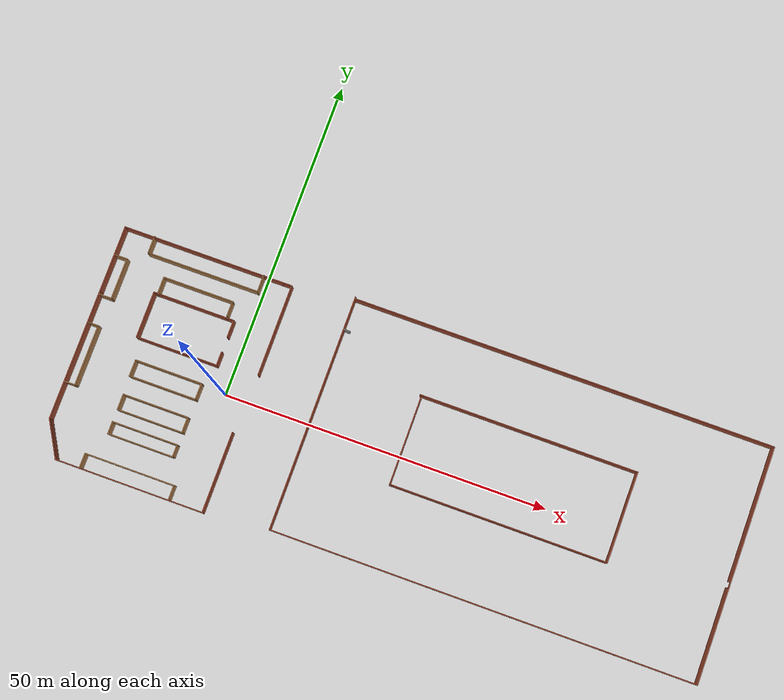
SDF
<sdf version="1.6">
 <world name="default">
  <light name="sun" type="directional">
   <pose>0 0 10 0 -0 0</pose>
   <diffuse>0.8 0.8 0.8 1</diffuse>
   <specular>0.1 0.1 0.1 1</specular>
   <attenuation>
    <range>1000</range>
    <constant>0.9</constant>
    <linear>0.01</linear>
    <quadratic>0.001</quadratic>
   </attenuation>
   <direction>-0.5 0.5 -1</direction>
  </light>
  <model name="ground_plane">
   <static>1</static>
   <link name="link">
    <collision name="collision">
     <geometry><plane><normal>0 0 1</normal><size>100 100</size></plane></geometry>
     <surface><friction><ode><mu>100</mu><mu2>50</mu2></ode></friction></surface>
    </collision>
    <visual name="visual">
     <cast_shadows>0</cast_shadows>
     <geometry><plane><normal>0 0 1</normal><size>100 100</size></plane></geometry>
     <material>
      <script><uri>file://media/materials/scripts/gazebo.material</uri><name>Gazebo/Grey</name></script>
     </material>
    </visual>
   </link>
  </model>
  <gravity>0 0 -9.8</gravity>
  <magnetic_field>6e-06 2.3e-05 -4.2e-05</magnetic_field>
  <atmosphere type="adiabatic"/>
  <physics name="default_physics" default="0" type="ode">
   <max_step_size>0.001</max_step_size>
   <real_time_factor>1</real_time_factor>
   <real_time_update_rate>1000</real_time_update_rate>
  </physics>
  <scene><ambient>0.4 0.4 0.4 1</ambient><background>0.7 0.7 0.7 1</background><shadows>1</shadows></scene>
  <spherical_coordinates>
   <surface_model>EARTH_WGS84</surface_model>
   <latitude_deg>0</latitude_deg>
   <longitude_deg>0</longitude_deg>
   <elevation>0</elevation>
   <heading_deg>0</heading_deg>
  </spherical_coordinates>
  <model name="beihang_express_center">
   <pose>-9.45731 0.496237 0 0 -0 0</pose>
   <link name="Wall_205">
    <collision name="Wall_205_Collision">
     <geometry><box><size>2.75 0.15 2.5</size></box></geometry>
     <pose>0 0 1.25 0 -0 0</pose>
    </collision>
    <visual name="Wall_205_Visual">
     <pose>0 0 1.25 0 -0 0</pose>
     <geometry><box><size>2.75 0.15 2.5</size></box></geometry>
     <material>
      <script><uri>file://media/materials/scripts/gazebo.material</uri><name>Gazebo/Wood</name></script>
      <ambient>1 1 1 1</ambient>
     </material>
    </visual>
    <pose>5.81506 11.3579 0 0 0 -1.5708</pose>
   </link>
   <link name="Wall_207">
    <collision name="Wall_207_Collision">
     <geometry><box><size>2.75 0.15 2.5</size></box></geometry>
     <pose>0 0 1.25 0 -0 0</pose>
    </collision>
    <visual name="Wall_207_Visual">
     <pose>0 0 1.25 0 -0 0</pose>
     <geometry><box><size>2.75 0.15 2.5</size></box></geometry>
     <material>
      <script><uri>file://media/materials/scripts/gazebo.material</uri><name>Gazebo/Wood</name></script>
      <ambient>1 1 1 1</ambient>
     </material>
    </visual>
    <pose>-8.58285 16.6253 0 0 0 -1.5708</pose>
   </link>
   <link name="Wall_208">
    <collision name="Wall_208_Collision">
     <geometry><box><size>17.5 0.15 2.5</size></box></geometry>
     <pose>0 0 1.25 0 -0 0</pose>
    </collision>
    <visual name="Wall_208_Visual">
     <pose>0 0 1.25 0 -0 0</pose>
     <geometry><box><size>17.5 0.15 2.5</size></box></geometry>
     <material>
      <script><uri>file://media/materials/scripts/gazebo.material</uri><name>Gazebo/Wood</name></script>
      <ambient>1 1 1 1</ambient>
     </material>
    </visual>
    <pose>0.092147 15.3253 0 0 -0 0</pose>
   </link>
   <link name="Wall_209">
    <collision name="Wall_209_Collision">
     <geometry><box><size>2.75 0.15 2.5</size></box></geometry>
     <pose>0 0 1.25 0 -0 0</pose>
    </collision>
    <visual name="Wall_209_Visual">
     <pose>0 0 1.25 0 -0 0</pose>
     <geometry><box><size>2.75 0.15 2.5</size></box></geometry>
     <material>
      <script><uri>file://media/materials/scripts/gazebo.material</uri><name>Gazebo/Wood</name></script>
      <ambient>1 1 1 1</ambient>
     </material>
    </visual>
    <pose>8.76715 16.6253 0 0 -0 1.5708</pose>
   </link>
   <link name="Wall_21">
    <collision name="Wall_21_Collision">
     <geometry><box><size>10.5 0.15 2.5</size></box></geometry>
     <pose>0 0 1.25 0 -0 0</pose>
    </collision>
    <visual name="Wall_21_Visual">
     <pose>0 0 1.25 0 -0 0</pose>
     <geometry><box><size>10.5 0.15 2.5</size></box></geometry>
     <material>
      <script><uri>file://media/materials/scripts/gazebo.material</uri><name>Gazebo/Wood</name></script>
      <ambient>1 1 1 1</ambient>
     </material>
    </visual>
    <pose>0.669976 -2.80823 0 0 -0 0</pose>
   </link>
   <link name="Wall_211">
    <collision name="Wall_211_Collision">
     <geometry><box><size>12.75 0.15 2.5</size></box></geometry>
     <pose>0 0 1.25 0 -0 0</pose>
    </collision>
    <visual name="Wall_211_Visual">
     <pose>0 0 1.25 0 -0 0</pose>
     <geometry><box><size>12.75 0.15 2.5</size></box></geometry>
     <material>
      <script><uri>file://media/materials/scripts/gazebo.material</uri><name>Gazebo/Bricks</name></script>
      <ambient>1 1 1 1</ambient>
     </material>
    </visual>
    <pose>0.686379 10.0587 0 0 -0 0</pose>
   </link>
   <link name="Wall_212">
    <collision name="Wall_212_Collision">
     <geometry><box><size>2.75 0.15 2.5</size></box></geometry>
     <pose>0 0 1.25 0 -0 0</pose>
    </collision>
    <visual name="Wall_212_Visual">
     <pose>0 0 1.25 0 -0 0</pose>
     <geometry><box><size>2.75 0.15 2.5</size></box></geometry>
     <material>
      <script><uri>file://media/materials/scripts/gazebo.material</uri><name>Gazebo/Bricks</name></script>
      <ambient>1 1 1 1</ambient>
     </material>
    </visual>
    <pose>6.98638 8.75875 0 0 0 -1.5708</pose>
   </link>
   <link name="Wall_216">
    <collision name="Wall_216_Collision">
     <geometry><box><size>7.25 0.15 2.5</size></box></geometry>
     <pose>0 0 1.25 0 -0 0</pose>
    </collision>
    <visual name="Wall_216_Visual">
     <pose>0 0 1.25 0 -0 0</pose>
     <geometry><box><size>7.25 0.15 2.5</size></box></geometry>
     <material>
      <script><uri>file://media/materials/scripts/gazebo.material</uri><name>Gazebo/Bricks</name></script>
      <ambient>1 1 1 1</ambient>
     </material>
    </visual>
    <pose>-5.61362 6.50875 0 0 0 -1.5708</pose>
   </link>
   <link name="Wall_217">
    <collision name="Wall_217_Collision">
     <geometry><box><size>12.75 0.15 2.5</size></box></geometry>
     <pose>0 0 1.25 0 -0 0</pose>
    </collision>
    <visual name="Wall_217_Visual">
     <pose>0 0 1.25 0 -0 0</pose>
     <geometry><box><size>12.75 0.15 2.5</size></box></geometry>
     <material>
      <script><uri>file://media/materials/scripts/gazebo.material</uri><name>Gazebo/Bricks</name></script>
      <ambient>1 1 1 1</ambient>
     </material>
    </visual>
    <pose>0.686379 2.95875 0 0 -0 0</pose>
   </link>
   <link name="Wall_218">
    <collision name="Wall_218_Collision">
     <geometry><box><size>2.25 0.15 2.5</size></box></geometry>
     <pose>0 0 1.25 0 -0 0</pose>
    </collision>
    <visual name="Wall_218_Visual">
     <pose>0 0 1.25 0 -0 0</pose>
     <geometry><box><size>2.25 0.15 2.5</size></box></geometry>
     <material>
      <script><uri>file://media/materials/scripts/gazebo.material</uri><name>Gazebo/Bricks</name></script>
      <ambient>1 1 1 1</ambient>
     </material>
    </visual>
    <pose>6.98638 4.00875 0 0 -0 1.5708</pose>
   </link>
   <link name="Wall_23">
    <collision name="Wall_23_Collision">
     <geometry><box><size>10.5 0.15 2.5</size></box></geometry>
     <pose>0 0 1.25 0 -0 0</pose>
    </collision>
    <visual name="Wall_23_Visual">
     <pose>0 0 1.25 0 -0 0</pose>
     <geometry><box><size>10.5 0.15 2.5</size></box></geometry>
     <material>
      <script><uri>file://media/materials/scripts/gazebo.material</uri><name>Gazebo/Wood</name></script>
      <ambient>1 1 1 1</ambient>
     </material>
    </visual>
    <pose>0.694409 -0.319602 0 0 -0 0</pose>
   </link>
   <link name="Wall_35">
    <collision name="Wall_35_Collision">
     <geometry><box><size>20.25 0.15 2.5</size></box></geometry>
     <pose>0 0 1.25 0 -0 0</pose>
    </collision>
    <visual name="Wall_35_Visual">
     <pose>0 0 1.25 0 -0 0</pose>
     <geometry><box><size>20.25 0.15 2.5</size></box></geometry>
     <material>
      <script><uri>file://media/materials/scripts/gazebo.material</uri><name>Gazebo/Bricks</name></script>
      <ambient>1 1 1 1</ambient>
     </material>
    </visual>
    <pose>-13.2113 -2.56508 0 0 0 -1.5708</pose>
   </link>
   <link name="Wall_36">
    <collision name="Wall_36_Collision">
     <geometry><box><size>6.25 0.15 2.5</size></box></geometry>
     <pose>0 0 1.25 0 -0 0</pose>
    </collision>
    <visual name="Wall_36_Visual">
     <pose>0 0 1.25 0 -0 0</pose>
     <geometry><box><size>6.25 0.15 2.5</size></box></geometry>
     <material>
      <script><uri>file://media/materials/scripts/gazebo.material</uri><name>Gazebo/Bricks</name></script>
      <ambient>1 1 1 1</ambient>
     </material>
    </visual>
    <pose>-11.6863 -15.2565 0 0 0 -1.0472</pose>
   </link>
   <link name="Wall_37">
    <collision name="Wall_37_Collision">
     <geometry><box><size>23 0.15 2.5</size></box></geometry>
     <pose>0 0 1.25 0 -0 0</pose>
    </collision>
    <visual name="Wall_37_Visual">
     <pose>0 0 1.25 0 -0 0</pose>
     <geometry><box><size>23 0.15 2.5</size></box></geometry>
     <material>
      <script><uri>file://media/materials/scripts/gazebo.material</uri><name>Gazebo/Bricks</name></script>
      <ambient>1 1 1 1</ambient>
     </material>
    </visual>
    <pose>1.26373 -17.8978 0 0 -0 0</pose>
   </link>
   <link name="Wall_39">
    <collision name="Wall_39_Collision">
     <geometry><box><size>10.5 0.15 2.5</size></box></geometry>
     <pose>0 0 1.25 0 -0 0</pose>
    </collision>
    <visual name="Wall_39_Visual">
     <pose>0 0 1.25 0 -0 0</pose>
     <geometry><box><size>10.5 0.15 2.5</size></box></geometry>
     <material>
      <script><uri>file://media/materials/scripts/gazebo.material</uri><name>Gazebo/Bricks</name></script>
      <ambient>1 1 1 1</ambient>
     </material>
    </visual>
    <pose>-13.2113 12.6599 0 0 -0 1.5708</pose>
   </link>
   <link name="Wall_40">
    <collision name="Wall_40_Collision">
     <geometry><box><size>25.25 0.15 2.5</size></box></geometry>
     <pose>0 0 1.25 0 -0 0</pose>
    </collision>
    <visual name="Wall_40_Visual">
     <pose>0 0 1.25 0 -0 0</pose>
     <geometry><box><size>25.25 0.15 2.5</size></box></geometry>
     <material>
      <script><uri>file://media/materials/scripts/gazebo.material</uri><name>Gazebo/Bricks</name></script>
      <ambient>1 1 1 1</ambient>
     </material>
    </visual>
    <pose>-0.661274 17.8349 0 0 -0 0</pose>
   </link>
   <link name="Wall_41">
    <collision name="Wall_41_Collision">
     <geometry><box><size>1.5 0.15 2.5</size></box></geometry>
     <pose>0 0 1.25 0 -0 0</pose>
    </collision>
    <visual name="Wall_41_Visual">
     <pose>0 0 1.25 0 -0 0</pose>
     <geometry><box><size>1.5 0.15 2.5</size></box></geometry>
     <material>
      <script><uri>file://media/materials/scripts/gazebo.material</uri><name>Gazebo/Bricks</name></script>
      <ambient>1 1 1 1</ambient>
     </material>
    </visual>
    <pose>12.5637 17.8349 0 0 -0 0</pose>
   </link>
   <link name="Wall_42">
    <collision name="Wall_42_Collision">
     <geometry><box><size>14.25 0.15 2.5</size></box></geometry>
     <pose>0 0 1.25 0 -0 0</pose>
    </collision>
    <visual name="Wall_42_Visual">
     <pose>0 0 1.25 0 -0 0</pose>
     <geometry><box><size>14.25 0.15 2.5</size></box></geometry>
     <material>
      <script><uri>file://media/materials/scripts/gazebo.material</uri><name>Gazebo/Bricks</name></script>
      <ambient>1 1 1 1</ambient>
     </material>
    </visual>
    <pose>13.2387 10.7849 0 0 0 -1.5708</pose>
   </link>
   <link name="Wall_45">
    <collision name="Wall_45_Collision">
     <geometry><box><size>12.5 0.15 2.5</size></box></geometry>
     <pose>0 0 1.25 0 -0 0</pose>
    </collision>
    <visual name="Wall_45_Visual">
     <pose>0 0 1.25 0 -0 0</pose>
     <geometry><box><size>12.5 0.15 2.5</size></box></geometry>
     <material>
      <script><uri>file://media/materials/scripts/gazebo.material</uri><name>Gazebo/Bricks</name></script>
      <ambient>1 1 1 1</ambient>
     </material>
    </visual>
    <pose>12.6887 -11.7228 0 0 -0 1.5708</pose>
   </link>
   <link name="Wall_51">
    <collision name="Wall_51_Collision">
     <geometry><box><size>2.63875 0.15 2.5</size></box></geometry>
     <pose>0 0 1.25 0 -0 0</pose>
    </collision>
    <visual name="Wall_51_Visual">
     <pose>0 0 1.25 0 -0 0</pose>
     <geometry><box><size>2.63875 0.15 2.5</size></box></geometry>
     <material>
      <script><uri>file://media/materials/scripts/gazebo.material</uri><name>Gazebo/Wood</name></script>
      <ambient>1 1 1 1</ambient>
     </material>
    </visual>
    <pose>-4.49281 -1.56391 0 0 0 -1.58061</pose>
   </link>
   <link name="Wall_53">
    <collision name="Wall_53_Collision">
     <geometry><box><size>2.63875 0.15 2.5</size></box></geometry>
     <pose>0 0 1.25 0 -0 0</pose>
    </collision>
    <visual name="Wall_53_Visual">
     <pose>0 0 1.25 0 -0 0</pose>
     <geometry><box><size>2.63875 0.15 2.5</size></box></geometry>
     <material>
      <script><uri>file://media/materials/scripts/gazebo.material</uri><name>Gazebo/Wood</name></script>
      <ambient>1 1 1 1</ambient>
     </material>
    </visual>
    <pose>5.85719 -1.56391 0 0 0 -1.58061</pose>
   </link>
   <link name="Wall_56">
    <collision name="Wall_56_Collision">
     <geometry><box><size>2.5 0.15 2.5</size></box></geometry>
     <pose>0 0 1.25 0 -0 0</pose>
    </collision>
    <visual name="Wall_56_Visual">
     <pose>0 0 1.25 0 -0 0</pose>
     <geometry><box><size>2.5 0.15 2.5</size></box></geometry>
     <material>
      <script><uri>file://media/materials/scripts/gazebo.material</uri><name>Gazebo/Wood</name></script>
      <ambient>1 1 1 1</ambient>
     </material>
    </visual>
    <pose>-4.34039 -6.84381 0 0 0 -1.5708</pose>
   </link>
   <link name="Wall_57">
    <collision name="Wall_57_Collision">
     <geometry><box><size>10.25 0.15 2.5</size></box></geometry>
     <pose>0 0 1.25 0 -0 0</pose>
    </collision>
    <visual name="Wall_57_Visual">
     <pose>0 0 1.25 0 -0 0</pose>
     <geometry><box><size>10.25 0.15 2.5</size></box></geometry>
     <material>
      <script><uri>file://media/materials/scripts/gazebo.material</uri><name>Gazebo/Wood</name></script>
      <ambient>1 1 1 1</ambient>
     </material>
    </visual>
    <pose>0.709612 -8.01881 0 0 -0 0</pose>
   </link>
   <link name="Wall_58">
    <collision name="Wall_58_Collision">
     <geometry><box><size>2.5 0.15 2.5</size></box></geometry>
     <pose>0 0 1.25 0 -0 0</pose>
    </collision>
    <visual name="Wall_58_Visual">
     <pose>0 0 1.25 0 -0 0</pose>
     <geometry><box><size>2.5 0.15 2.5</size></box></geometry>
     <material>
      <script><uri>file://media/materials/scripts/gazebo.material</uri><name>Gazebo/Wood</name></script>
      <ambient>1 1 1 1</ambient>
     </material>
    </visual>
    <pose>5.75961 -6.84381 0 0 -0 1.5708</pose>
   </link>
   <link name="Wall_59">
    <collision name="Wall_59_Collision">
     <geometry><box><size>10.25 0.15 2.5</size></box></geometry>
     <pose>0 0 1.25 0 -0 0</pose>
    </collision>
    <visual name="Wall_59_Visual">
     <pose>0 0 1.25 0 -0 0</pose>
     <geometry><box><size>10.25 0.15 2.5</size></box></geometry>
     <material>
      <script><uri>file://media/materials/scripts/gazebo.material</uri><name>Gazebo/Wood</name></script>
      <ambient>1 1 1 1</ambient>
     </material>
    </visual>
    <pose>0.709612 -5.66881 0 0 -0 3.14159</pose>
   </link>
   <link name="Wall_68">
    <collision name="Wall_68_Collision">
     <geometry><box><size>2 0.15 2.5</size></box></geometry>
     <pose>0 0 1.25 0 -0 0</pose>
    </collision>
    <visual name="Wall_68_Visual">
     <pose>0 0 1.25 0 -0 0</pose>
     <geometry><box><size>2 0.15 2.5</size></box></geometry>
     <material>
      <script><uri>file://media/materials/scripts/gazebo.material</uri><name>Gazebo/Wood</name></script>
      <ambient>1 1 1 1</ambient>
     </material>
    </visual>
    <pose>-4.35681 -10.8804 0 0 0 -1.5708</pose>
   </link>
   <link name="Wall_69">
    <collision name="Wall_69_Collision">
     <geometry><box><size>10.25 0.15 2.5</size></box></geometry>
     <pose>0 0 1.25 0 -0 0</pose>
    </collision>
    <visual name="Wall_69_Visual">
     <pose>0 0 1.25 0 -0 0</pose>
     <geometry><box><size>10.25 0.15 2.5</size></box></geometry>
     <material>
      <script><uri>file://media/materials/scripts/gazebo.material</uri><name>Gazebo/Wood</name></script>
      <ambient>1 1 1 1</ambient>
     </material>
    </visual>
    <pose>0.693193 -11.8054 0 0 -0 0</pose>
   </link>
   <link name="Wall_70">
    <collision name="Wall_70_Collision">
     <geometry><box><size>2 0.15 2.5</size></box></geometry>
     <pose>0 0 1.25 0 -0 0</pose>
    </collision>
    <visual name="Wall_70_Visual">
     <pose>0 0 1.25 0 -0 0</pose>
     <geometry><box><size>2 0.15 2.5</size></box></geometry>
     <material>
      <script><uri>file://media/materials/scripts/gazebo.material</uri><name>Gazebo/Wood</name></script>
      <ambient>1 1 1 1</ambient>
     </material>
    </visual>
    <pose>5.74319 -10.8804 0 0 -0 1.5708</pose>
   </link>
   <link name="Wall_71">
    <collision name="Wall_71_Collision">
     <geometry><box><size>10.25 0.15 2.5</size></box></geometry>
     <pose>0 0 1.25 0 -0 0</pose>
    </collision>
    <visual name="Wall_71_Visual">
     <pose>0 0 1.25 0 -0 0</pose>
     <geometry><box><size>10.25 0.15 2.5</size></box></geometry>
     <material>
      <script><uri>file://media/materials/scripts/gazebo.material</uri><name>Gazebo/Wood</name></script>
      <ambient>1 1 1 1</ambient>
     </material>
    </visual>
    <pose>0.693193 -9.95541 0 0 -0 3.14159</pose>
   </link>
   <link name="Wall_73">
    <collision name="Wall_73_Collision">
     <geometry><box><size>1.75 0.15 2.5</size></box></geometry>
     <pose>0 0 1.25 0 -0 0</pose>
    </collision>
    <visual name="Wall_73_Visual">
     <pose>0 0 1.25 0 -0 0</pose>
     <geometry><box><size>1.75 0.15 2.5</size></box></geometry>
     <material>
      <script><uri>file://media/materials/scripts/gazebo.material</uri><name>Gazebo/Wood</name></script>
      <ambient>1 1 1 1</ambient>
     </material>
    </visual>
    <pose>-12.3389 2.56386 0 0 -0 0</pose>
   </link>
   <link name="Wall_74">
    <collision name="Wall_74_Collision">
     <geometry><box><size>9.5 0.15 2.5</size></box></geometry>
     <pose>0 0 1.25 0 -0 0</pose>
    </collision>
    <visual name="Wall_74_Visual">
     <pose>0 0 1.25 0 -0 0</pose>
     <geometry><box><size>9.5 0.15 2.5</size></box></geometry>
     <material>
      <script><uri>file://media/materials/scripts/gazebo.material</uri><name>Gazebo/Wood</name></script>
      <ambient>1 1 1 1</ambient>
     </material>
    </visual>
    <pose>-11.5389 -2.11114 0 0 0 -1.5708</pose>
   </link>
   <link name="Wall_75">
    <collision name="Wall_75_Collision">
     <geometry><box><size>1.75 0.15 2.5</size></box></geometry>
     <pose>0 0 1.25 0 -0 0</pose>
    </collision>
    <visual name="Wall_75_Visual">
     <pose>0 0 1.25 0 -0 0</pose>
     <geometry><box><size>1.75 0.15 2.5</size></box></geometry>
     <material>
      <script><uri>file://media/materials/scripts/gazebo.material</uri><name>Gazebo/Wood</name></script>
      <ambient>1 1 1 1</ambient>
     </material>
    </visual>
    <pose>-12.3389 -6.78614 0 0 -0 3.14159</pose>
   </link>
   <link name="Wall_77">
    <collision name="Wall_77_Collision">
     <geometry><box><size>2 0.15 2.5</size></box></geometry>
     <pose>0 0 1.25 0 -0 0</pose>
    </collision>
    <visual name="Wall_77_Visual">
     <pose>0 0 1.25 0 -0 0</pose>
     <geometry><box><size>2 0.15 2.5</size></box></geometry>
     <material>
      <script><uri>file://media/materials/scripts/gazebo.material</uri><name>Gazebo/Wood</name></script>
      <ambient>1 1 1 1</ambient>
     </material>
    </visual>
    <pose>-12.1362 13.3911 0 0 -0 0</pose>
   </link>
   <link name="Wall_78">
    <collision name="Wall_78_Collision">
     <geometry><box><size>6.5 0.15 2.5</size></box></geometry>
     <pose>0 0 1.25 0 -0 0</pose>
    </collision>
    <visual name="Wall_78_Visual">
     <pose>0 0 1.25 0 -0 0</pose>
     <geometry><box><size>6.5 0.15 2.5</size></box></geometry>
     <material>
      <script><uri>file://media/materials/scripts/gazebo.material</uri><name>Gazebo/Wood</name></script>
      <ambient>1 1 1 1</ambient>
     </material>
    </visual>
    <pose>-11.2112 10.2161 0 0 0 -1.5708</pose>
   </link>
   <link name="Wall_79">
    <collision name="Wall_79_Collision">
     <geometry><box><size>2 0.15 2.5</size></box></geometry>
     <pose>0 0 1.25 0 -0 0</pose>
    </collision>
    <visual name="Wall_79_Visual">
     <pose>0 0 1.25 0 -0 0</pose>
     <geometry><box><size>2 0.15 2.5</size></box></geometry>
     <material>
      <script><uri>file://media/materials/scripts/gazebo.material</uri><name>Gazebo/Wood</name></script>
      <ambient>1 1 1 1</ambient>
     </material>
    </visual>
    <pose>-12.1362 7.0411 0 0 -0 3.14159</pose>
   </link>
   <link name="Wall_81">
    <collision name="Wall_81_Collision">
     <geometry><box><size>2.25 0.15 2.5</size></box></geometry>
     <pose>0 0 1.25 0 -0 0</pose>
    </collision>
    <visual name="Wall_81_Visual">
     <pose>0 0 1.25 0 -0 0</pose>
     <geometry><box><size>2.25 0.15 2.5</size></box></geometry>
     <material>
      <script><uri>file://media/materials/scripts/gazebo.material</uri><name>Gazebo/Wood</name></script>
      <ambient>1 1 1 1</ambient>
     </material>
    </visual>
    <pose>-6.42427 -16.6813 0 0 -0 1.5708</pose>
   </link>
   <link name="Wall_82">
    <collision name="Wall_82_Collision">
     <geometry><box><size>14 0.15 2.5</size></box></geometry>
     <pose>0 0 1.25 0 -0 0</pose>
    </collision>
    <visual name="Wall_82_Visual">
     <pose>0 0 1.25 0 -0 0</pose>
     <geometry><box><size>14 0.15 2.5</size></box></geometry>
     <material>
      <script><uri>file://media/materials/scripts/gazebo.material</uri><name>Gazebo/Wood</name></script>
      <ambient>1 1 1 1</ambient>
     </material>
    </visual>
    <pose>0.500734 -15.6313 0 0 -0 0</pose>
   </link>
   <link name="Wall_83">
    <collision name="Wall_83_Collision">
     <geometry><box><size>2.25 0.15 2.5</size></box></geometry>
     <pose>0 0 1.25 0 -0 0</pose>
    </collision>
    <visual name="Wall_83_Visual">
     <pose>0 0 1.25 0 -0 0</pose>
     <geometry><box><size>2.25 0.15 2.5</size></box></geometry>
     <material>
      <script><uri>file://media/materials/scripts/gazebo.material</uri><name>Gazebo/Wood</name></script>
      <ambient>1 1 1 1</ambient>
     </material>
    </visual>
    <pose>7.42574 -16.6813 0 0 0 -1.5708</pose>
   </link>
   <link name="Wall_89">
    <collision name="Wall_89_Collision">
     <geometry><box><size>2.75 0.15 2.5</size></box></geometry>
     <pose>0 0 1.25 0 -0 0</pose>
    </collision>
    <visual name="Wall_89_Visual">
     <pose>0 0 1.25 0 -0 0</pose>
     <geometry><box><size>2.75 0.15 2.5</size></box></geometry>
     <material>
      <script><uri>file://media/materials/scripts/gazebo.material</uri><name>Gazebo/Wood</name></script>
      <ambient>1 1 1 1</ambient>
     </material>
    </visual>
    <pose>-5.03493 11.3579 0 0 -0 1.5708</pose>
   </link>
   <link name="Wall_90">
    <collision name="Wall_90_Collision">
     <geometry><box><size>11 0.15 2.5</size></box></geometry>
     <pose>0 0 1.25 0 -0 0</pose>
    </collision>
    <visual name="Wall_90_Visual">
     <pose>0 0 1.25 0 -0 0</pose>
     <geometry><box><size>11 0.15 2.5</size></box></geometry>
     <material>
      <script><uri>file://media/materials/scripts/gazebo.material</uri><name>Gazebo/Wood</name></script>
      <ambient>1 1 1 1</ambient>
     </material>
    </visual>
    <pose>0.390065 12.6579 0 0 -0 0</pose>
   </link>
   <link name="Wall_92">
    <collision name="Wall_92_Collision">
     <geometry><box><size>0.15 0.15 2.5</size></box></geometry>
     <pose>0 0 1.25 0 -0 0</pose>
    </collision>
    <visual name="Wall_92_Visual">
     <pose>0 0 1.25 0 -0 0</pose>
     <geometry><box><size>0.15 0.15 2.5</size></box></geometry>
     <material>
      <script><uri>file://media/materials/scripts/gazebo.material</uri><name>Gazebo/Grey</name></script>
      <ambient>1 1 1 1</ambient>
     </material>
    </visual>
    <pose>5.81506 10.3079 0 0 -0 0</pose>
   </link>
   <static>1</static>
  </model>
  <model name="caochang">
   <pose>45.8106 1.7594 0 0 -0 0</pose>
   <link name="Door_0">
    <collision name="Door_0_Collision">
     <geometry><box><size>0.9 0.17 2</size></box></geometry>
     <pose>0 0 1 0 -0 0</pose>
    </collision>
    <visual name="Door_0_Visual">
     <pose>0 0 1 0 -0 0</pose>
     <geometry><box><size>0.9 0.17 2</size></box></geometry>
     <material>
      <script><uri>file://media/materials/scripts/gazebo.material</uri><name>Gazebo/Grey</name></script>
     </material>
    </visual>
    <pose>-32.0797 13.1431 0 0 -0 0</pose>
   </link>
   <link name="Wall_0">
    <collision name="Wall_0_Collision">
     <geometry><box><size>65.25 0.15 2.5</size></box></geometry>
     <pose>0 0 1.25 0 -0 0</pose>
    </collision>
    <visual name="Wall_0_Visual">
     <pose>0 0 1.25 0 -0 0</pose>
     <geometry><box><size>65.25 0.15 2.5</size></box></geometry>
     <material>
      <script><uri>file://media/materials/scripts/gazebo.material</uri><name>Gazebo/Bricks</name></script>
      <ambient>1 1 1 1</ambient>
     </material>
    </visual>
    <pose>1e-06 17.925 0 0 -0 0</pose>
   </link>
   <link name="Wall_1">
    <pose>32.55 -0.125 0 0 0 -1.5708</pose>
    <visual name="Wall_1_Visual_0">
     <pose>-7.75449 0 1.25 0 -0 0</pose>
     <geometry><box><size>20.741 0.15 2.5</size></box></geometry>
     <material>
      <script><uri>file://media/materials/scripts/gazebo.material</uri><name>Gazebo/Bricks</name></script>
      <ambient>1 1 1 1</ambient>
     </material>
    </visual>
    <collision name="Wall_1_Collision_0">
     <geometry><box><size>20.741 0.15 2.5</size></box></geometry>
     <pose>-7.75449 0 1.25 0 -0 0</pose>
    </collision>
    <visual name="Wall_1_Visual_1">
     <pose>10.8205 0 1.25 0 -0 0</pose>
     <geometry><box><size>14.609 0.15 2.5</size></box></geometry>
     <material>
      <script><uri>file://media/materials/scripts/gazebo.material</uri><name>Gazebo/Bricks</name></script>
      <ambient>1 1 1 1</ambient>
     </material>
    </visual>
    <collision name="Wall_1_Collision_1">
     <geometry><box><size>14.609 0.15 2.5</size></box></geometry>
     <pose>10.8205 0 1.25 0 -0 0</pose>
    </collision>
    <visual name="Wall_1_Visual_2">
     <pose>3.06601 0 2.25 0 -0 0</pose>
     <geometry><box><size>0.9 0.15 0.5</size></box></geometry>
     <material>
      <script><uri>file://media/materials/scripts/gazebo.material</uri><name>Gazebo/Bricks</name></script>
      <ambient>1 1 1 1</ambient>
     </material>
    </visual>
    <collision name="Wall_1_Collision_2">
     <geometry><box><size>0.9 0.15 0.5</size></box></geometry>
     <pose>3.06601 0 2.25 0 -0 0</pose>
    </collision>
   </link>
   <link name="Wall_2">
    <collision name="Wall_2_Collision">
     <geometry><box><size>65.25 0.15 2.5</size></box></geometry>
     <pose>0 0 1.25 0 -0 0</pose>
    </collision>
    <visual name="Wall_2_Visual">
     <pose>0 0 1.25 0 -0 0</pose>
     <geometry><box><size>65.25 0.15 2.5</size></box></geometry>
     <material>
      <script><uri>file://media/materials/scripts/gazebo.material</uri><name>Gazebo/Bricks</name></script>
      <ambient>1 1 1 1</ambient>
     </material>
    </visual>
    <pose>1e-06 -18.175 0 0 -0 3.14159</pose>
   </link>
   <link name="Wall_3">
    <collision name="Wall_3_Collision">
     <geometry><box><size>36.5 0.15 2.5</size></box></geometry>
     <pose>0 0 1.25 0 -0 0</pose>
    </collision>
    <visual name="Wall_3_Visual">
     <pose>0 0 1.25 0 -0 0</pose>
     <geometry><box><size>36.5 0.15 2.5</size></box></geometry>
     <material>
      <script><uri>file://media/materials/scripts/gazebo.material</uri><name>Gazebo/Bricks</name></script>
      <ambient>1 1 1 1</ambient>
     </material>
    </visual>
    <pose>-32.55 0 0 0 -0 1.5708</pose>
   </link>
   <link name="Wall_5">
    <collision name="Wall_5_Collision">
     <geometry><box><size>13.75 0.15 2.5</size></box></geometry>
     <pose>0 0 1.25 0 -0 0</pose>
    </collision>
    <visual name="Wall_5_Visual">
     <pose>0 0 1.25 0 -0 0</pose>
     <geometry><box><size>13.75 0.15 2.5</size></box></geometry>
     <material>
      <script><uri>file://media/materials/scripts/gazebo.material</uri><name>Gazebo/Bricks</name></script>
      <ambient>1 1 1 1</ambient>
     </material>
    </visual>
    <pose>-18.3968 0.660479 0 0 0 -1.5708</pose>
   </link>
   <link name="Wall_6">
    <collision name="Wall_6_Collision">
     <geometry><box><size>33.5 0.15 2.5</size></box></geometry>
     <pose>0 0 1.25 0 -0 0</pose>
    </collision>
    <visual name="Wall_6_Visual">
     <pose>0 0 1.25 0 -0 0</pose>
     <geometry><box><size>33.5 0.15 2.5</size></box></geometry>
     <material>
      <script><uri>file://media/materials/scripts/gazebo.material</uri><name>Gazebo/Bricks</name></script>
      <ambient>1 1 1 1</ambient>
     </material>
    </visual>
    <pose>-1.72181 -6.13952 0 0 -0 0</pose>
   </link>
   <link name="Wall_7">
    <collision name="Wall_7_Collision">
     <geometry><box><size>14 0.15 2.5</size></box></geometry>
     <pose>0 0 1.25 0 -0 0</pose>
    </collision>
    <visual name="Wall_7_Visual">
     <pose>0 0 1.25 0 -0 0</pose>
     <geometry><box><size>14 0.15 2.5</size></box></geometry>
     <material>
      <script><uri>file://media/materials/scripts/gazebo.material</uri><name>Gazebo/Bricks</name></script>
      <ambient>1 1 1 1</ambient>
     </material>
    </visual>
    <pose>14.9532 0.785479 0 0 -0 1.5708</pose>
   </link>
   <link name="Wall_8">
    <collision name="Wall_8_Collision">
     <geometry><box><size>33.75 0.15 2.5</size></box></geometry>
     <pose>0 0 1.25 0 -0 0</pose>
    </collision>
    <visual name="Wall_8_Visual">
     <pose>0 0 1.25 0 -0 0</pose>
     <geometry><box><size>33.75 0.15 2.5</size></box></geometry>
     <material>
      <script><uri>file://media/materials/scripts/gazebo.material</uri><name>Gazebo/Bricks</name></script>
      <ambient>1 1 1 1</ambient>
     </material>
    </visual>
    <pose>-1.84681 7.71048 0 0 -0 3.14159</pose>
   </link>
   <static>1</static>
  </model>
 </world>
</sdf>
